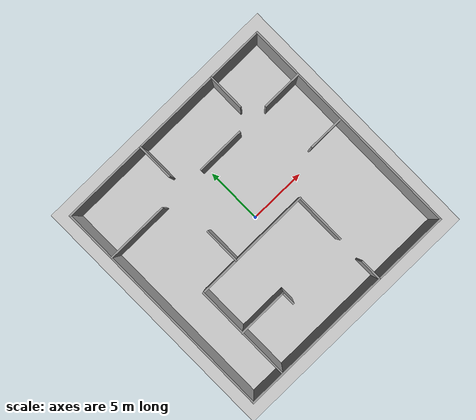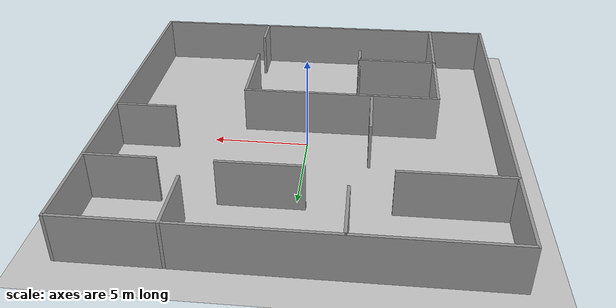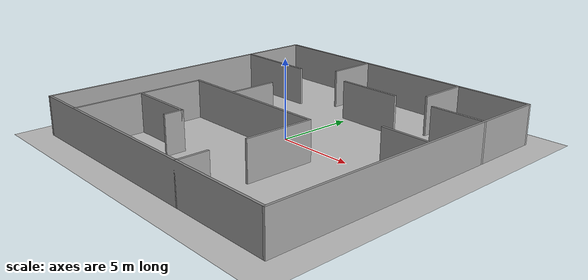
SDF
<sdf version="1.6">
 <world name="default">
  <light name="sun" type="directional">
   <pose>0 0 10 0 -0 0</pose>
   <diffuse>0.8 0.8 0.8 1</diffuse>
   <specular>0.2 0.2 0.2 1</specular>
   <attenuation>
    <range>1000</range>
    <constant>0.9</constant>
    <linear>0.01</linear>
    <quadratic>0.001</quadratic>
   </attenuation>
   <direction>-0.5 0.1 -0.9</direction>
  </light>
  <model name="ground_plane">
   <static>1</static>
   <link name="link">
    <collision name="collision">
     <geometry><plane><normal>0 0 1</normal><size>100 100</size></plane></geometry>
     <surface>
      <contact><collide_bitmask>65535</collide_bitmask></contact>
      <friction><ode><mu>100</mu><mu2>50</mu2></ode></friction>
     </surface>
    </collision>
    <visual name="visual">
     <cast_shadows>0</cast_shadows>
     <geometry><plane><normal>0 0 1</normal><size>100 100</size></plane></geometry>
     <material>
      <script><uri>file://media/materials/scripts/gazebo.material</uri><name>Gazebo/Grey</name></script>
     </material>
    </visual>
   </link>
  </model>
  <gravity>0 0 -9.8</gravity>
  <magnetic_field>6e-06 2.3e-05 -4.2e-05</magnetic_field>
  <atmosphere type="adiabatic"/>
  <physics name="default_physics" default="0" type="ode">
   <max_step_size>0.001</max_step_size>
   <real_time_factor>1</real_time_factor>
   <real_time_update_rate>1000</real_time_update_rate>
  </physics>
  <scene><ambient>0.4 0.4 0.4 1</ambient><background>0.7 0.7 0.7 1</background><shadows>1</shadows></scene>
  <audio><device>default</device></audio>
  <spherical_coordinates>
   <surface_model>EARTH_WGS84</surface_model>
   <latitude_deg>0</latitude_deg>
   <longitude_deg>0</longitude_deg>
   <elevation>0</elevation>
   <heading_deg>0</heading_deg>
  </spherical_coordinates>
  <model name="Second_own_world">
   <pose>0 3e-06 0 0 -0 0</pose>
   <link name="Wall_0">
    <collision name="Wall_0_Collision">
     <geometry><box><size>20.15 0.15 2.5</size></box></geometry>
     <pose>0 0 1.25 0 -0 0</pose>
    </collision>
    <visual name="Wall_0_Visual">
     <pose>0 0 1.25 0 -0 0</pose>
     <geometry><box><size>20.15 0.15 2.5</size></box></geometry>
     <material>
      <script><uri>file://media/materials/scripts/gazebo.material</uri><name>Gazebo/Grey</name></script>
      <ambient>1 1 1 1</ambient>
     </material>
     <meta><layer>0</layer></meta>
    </visual>
    <pose>0 -10 0 0 -0 0</pose>
   </link>
   <link name="Wall_11">
    <collision name="Wall_11_Collision">
     <geometry><box><size>5.5579 0.15 2.5</size></box></geometry>
     <pose>0 0 1.25 0 -0 0</pose>
    </collision>
    <visual name="Wall_11_Visual">
     <pose>0 0 1.25 0 -0 0</pose>
     <geometry><box><size>5.5579 0.15 2.5</size></box></geometry>
     <material>
      <script><uri>file://media/materials/scripts/gazebo.material</uri><name>Gazebo/Grey</name></script>
      <ambient>1 1 1 1</ambient>
     </material>
     <meta><layer>0</layer></meta>
    </visual>
    <pose>-7.296 5.5 0 0 -0 0</pose>
   </link>
   <link name="Wall_13">
    <collision name="Wall_13_Collision">
     <geometry><box><size>4.25 0.15 2.5</size></box></geometry>
     <pose>0 0 1.25 0 -0 0</pose>
    </collision>
    <visual name="Wall_13_Visual">
     <pose>0 0 1.25 0 -0 0</pose>
     <geometry><box><size>4.25 0.15 2.5</size></box></geometry>
     <material>
      <script><uri>file://media/materials/scripts/gazebo.material</uri><name>Gazebo/Grey</name></script>
      <ambient>1 1 1 1</ambient>
     </material>
     <meta><layer>0</layer></meta>
    </visual>
    <pose>1.655 5.514 0 0 -0 0</pose>
   </link>
   <link name="Wall_15">
    <collision name="Wall_15_Collision">
     <geometry><box><size>3.595 0.15 2.5</size></box></geometry>
     <pose>0 0 1.25 0 -0 0</pose>
    </collision>
    <visual name="Wall_15_Visual">
     <pose>0 0 1.25 0 -0 0</pose>
     <geometry><box><size>3.595 0.15 2.5</size></box></geometry>
     <material>
      <script><uri>file://media/materials/scripts/gazebo.material</uri><name>Gazebo/Grey</name></script>
      <ambient>1 1 1 1</ambient>
     </material>
     <meta><layer>0</layer></meta>
    </visual>
    <pose>8.2775 5.514 0 0 -0 0</pose>
   </link>
   <link name="Wall_17">
    <collision name="Wall_17_Collision">
     <geometry><box><size>1.99 0.15 2.5</size></box></geometry>
     <pose>0 0 1.25 0 -0 0</pose>
    </collision>
    <visual name="Wall_17_Visual">
     <pose>0 0 1.25 0 -0 0</pose>
     <geometry><box><size>1.99 0.15 2.5</size></box></geometry>
     <material>
      <script><uri>file://media/materials/scripts/gazebo.material</uri><name>Gazebo/Grey</name></script>
      <ambient>1 1 1 1</ambient>
     </material>
     <meta><layer>0</layer></meta>
    </visual>
    <pose>3.489 -9.08 0 0 -0 -1.5708</pose>
   </link>
   <link name="Wall_19">
    <collision name="Wall_19_Collision">
     <geometry><box><size>3.28601 0.15 2.5</size></box></geometry>
     <pose>0 0 1.25 0 -0 0</pose>
    </collision>
    <visual name="Wall_19_Visual">
     <pose>0 0 1.25 0 -0 0</pose>
     <geometry><box><size>3.28601 0.15 2.5</size></box></geometry>
     <material>
      <script><uri>file://media/materials/scripts/gazebo.material</uri><name>Gazebo/Grey</name></script>
      <ambient>1 1 1 1</ambient>
     </material>
     <meta><layer>0</layer></meta>
    </visual>
    <pose>-2.498 8.432 0 0 -0 -1.5708</pose>
   </link>
   <link name="Wall_2">
    <collision name="Wall_2_Collision">
     <geometry><box><size>20.15 0.15 2.5</size></box></geometry>
     <pose>0 0 1.25 0 -0 0</pose>
    </collision>
    <visual name="Wall_2_Visual">
     <pose>0 0 1.25 0 -0 0</pose>
     <geometry><box><size>20.15 0.15 2.5</size></box></geometry>
     <material>
      <script><uri>file://media/materials/scripts/gazebo.material</uri><name>Gazebo/Grey</name></script>
      <ambient>1 1 1 1</ambient>
     </material>
     <meta><layer>0</layer></meta>
    </visual>
    <pose>10 -3e-06 0 0 -0 1.5708</pose>
   </link>
   <link name="Wall_21">
    <collision name="Wall_21_Collision">
     <geometry><box><size>3.286 0.15 2.5</size></box></geometry>
     <pose>0 0 1.25 0 -0 0</pose>
    </collision>
    <visual name="Wall_21_Visual">
     <pose>0 0 1.25 0 -0 0</pose>
     <geometry><box><size>3.286 0.15 2.5</size></box></geometry>
     <material>
      <script><uri>file://media/materials/scripts/gazebo.material</uri><name>Gazebo/Grey</name></script>
      <ambient>1 1 1 1</ambient>
     </material>
     <meta><layer>0</layer></meta>
    </visual>
    <pose>5.102 8.432 0 0 -0 1.5708</pose>
   </link>
   <link name="Wall_23">
    <collision name="Wall_23_Collision">
     <geometry><box><size>3.25 0.15 2.5</size></box></geometry>
     <pose>0 0 1.25 0 -0 0</pose>
    </collision>
    <visual name="Wall_23_Visual">
     <pose>0 0 1.25 0 -0 0</pose>
     <geometry><box><size>3.25 0.15 2.5</size></box></geometry>
     <material>
      <script><uri>file://media/materials/scripts/gazebo.material</uri><name>Gazebo/Grey</name></script>
      <ambient>1 1 1 1</ambient>
     </material>
     <meta><layer>0</layer></meta>
    </visual>
    <pose>-3.348 0.226997 0 0 -0 1.5708</pose>
   </link>
   <link name="Wall_25">
    <collision name="Wall_25_Collision">
     <geometry><box><size>3.25 0.15 2.5</size></box></geometry>
     <pose>0 0 1.25 0 -0 0</pose>
    </collision>
    <visual name="Wall_25_Visual">
     <pose>0 0 1.25 0 -0 0</pose>
     <geometry><box><size>3.25 0.15 2.5</size></box></geometry>
     <material>
      <script><uri>file://media/materials/scripts/gazebo.material</uri><name>Gazebo/Grey</name></script>
      <ambient>1 1 1 1</ambient>
     </material>
     <meta><layer>0</layer></meta>
    </visual>
    <pose>8.4427 0.810887 0 0 -0 0</pose>
   </link>
   <link name="Wall_28">
    <collision name="Wall_28_Collision">
     <geometry><box><size>4.5 0.15 2.5</size></box></geometry>
     <pose>0 0 1.25 0 -0 0</pose>
    </collision>
    <visual name="Wall_28_Visual">
     <pose>0 0 1.25 0 -0 0</pose>
     <geometry><box><size>4.5 0.15 2.5</size></box></geometry>
     <material>
      <script><uri>file://media/materials/scripts/gazebo.material</uri><name>Gazebo/Grey</name></script>
      <ambient>1 1 1 1</ambient>
     </material>
     <meta><layer>0</layer></meta>
    </visual>
    <pose>-4.71121 -5.59976 0 0 -0 0</pose>
   </link>
   <link name="Wall_29">
    <collision name="Wall_29_Collision">
     <geometry><box><size>1.25 0.15 2.5</size></box></geometry>
     <pose>0 0 1.25 0 -0 0</pose>
    </collision>
    <visual name="Wall_29_Visual">
     <pose>0 0 1.25 0 -0 0</pose>
     <geometry><box><size>1.25 0.15 2.5</size></box></geometry>
     <material>
      <script><uri>file://media/materials/scripts/gazebo.material</uri><name>Gazebo/Grey</name></script>
      <ambient>1 1 1 1</ambient>
     </material>
     <meta><layer>0</layer></meta>
    </visual>
    <pose>-2.53621 -6.14976 0 0 -0 -1.5708</pose>
   </link>
   <link name="Wall_3">
    <collision name="Wall_3_Collision">
     <geometry><box><size>20.15 0.15 2.5</size></box></geometry>
     <pose>0 0 1.25 0 -0 0</pose>
    </collision>
    <visual name="Wall_3_Visual">
     <pose>0 0 1.25 0 -0 0</pose>
     <geometry><box><size>20.15 0.15 2.5</size></box></geometry>
     <material>
      <script><uri>file://media/materials/scripts/gazebo.material</uri><name>Gazebo/Grey</name></script>
      <ambient>1 1 1 1</ambient>
     </material>
     <meta><layer>0</layer></meta>
    </visual>
    <pose>0 10 0 0 -0 3.14159</pose>
   </link>
   <link name="Wall_4">
    <collision name="Wall_4_Collision">
     <geometry><box><size>20.15 0.15 2.5</size></box></geometry>
     <pose>0 0 1.25 0 -0 0</pose>
    </collision>
    <visual name="Wall_4_Visual">
     <pose>0 0 1.25 0 -0 0</pose>
     <geometry><box><size>20.15 0.15 2.5</size></box></geometry>
     <material>
      <script><uri>file://media/materials/scripts/gazebo.material</uri><name>Gazebo/Grey</name></script>
      <ambient>1 1 1 1</ambient>
     </material>
     <meta><layer>0</layer></meta>
    </visual>
    <pose>-10 -3e-06 0 0 -0 -1.5708</pose>
   </link>
   <link name="Wall_7">
    <collision name="Wall_7_Collision">
     <geometry><box><size>8.80984 0.15 2.5</size></box></geometry>
     <pose>0 0 1.25 0 -0 0</pose>
    </collision>
    <visual name="Wall_7_Visual">
     <pose>0 0 1.25 0 -0 0</pose>
     <geometry><box><size>8.80984 0.15 2.5</size></box></geometry>
     <material>
      <script><uri>file://media/materials/scripts/gazebo.material</uri><name>Gazebo/Grey</name></script>
      <ambient>1 1 1 1</ambient>
     </material>
     <meta><layer>0</layer></meta>
    </visual>
    <pose>-6.868 -5.67 0 0 -0 1.5708</pose>
   </link>
   <link name="Wall_8">
    <collision name="Wall_8_Collision">
     <geometry><box><size>10.5 0.15 2.5</size></box></geometry>
     <pose>0 0 1.25 0 -0 0</pose>
    </collision>
    <visual name="Wall_8_Visual">
     <pose>0 0 1.25 0 -0 0</pose>
     <geometry><box><size>10.5 0.15 2.5</size></box></geometry>
     <material>
      <script><uri>file://media/materials/scripts/gazebo.material</uri><name>Gazebo/Grey</name></script>
      <ambient>1 1 1 1</ambient>
     </material>
     <meta><layer>0</layer></meta>
    </visual>
    <pose>-1.69277 -1.34008 0 0 -0 -1.5e-05</pose>
   </link>
   <link name="Wall_9">
    <collision name="Wall_9_Collision">
     <geometry><box><size>4.5 0.15 2.5</size></box></geometry>
     <pose>0 0 1.25 0 -0 0</pose>
    </collision>
    <visual name="Wall_9_Visual">
     <pose>0 0 1.25 0 -0 0</pose>
     <geometry><box><size>4.5 0.15 2.5</size></box></geometry>
     <material>
      <script><uri>file://media/materials/scripts/gazebo.material</uri><name>Gazebo/Grey</name></script>
      <ambient>1 1 1 1</ambient>
     </material>
     <meta><layer>0</layer></meta>
    </visual>
    <pose>3.48246 -3.51516 0 0 -0 -1.5708</pose>
   </link>
   <static>1</static>
  </model>
 </world>
</sdf>
